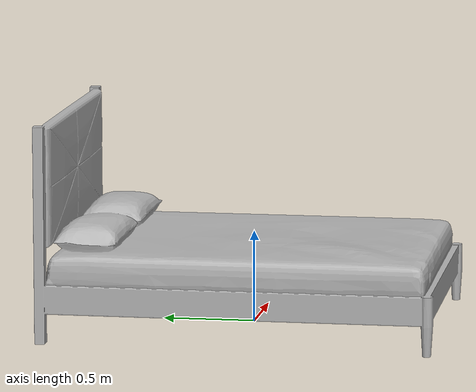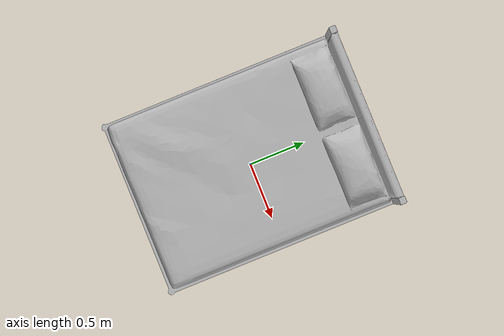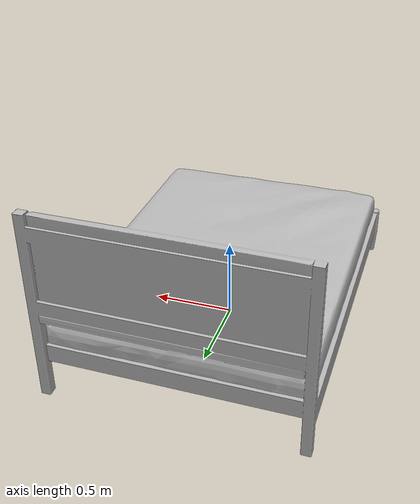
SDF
<sdf version="1.6">
	<model name="Beds_O1ebe36c65561_lod0">
		<link name="main_link">
			<visual name="visual_RootNode">
				<geometry>
					<mesh>
						<uri>model://Beds_O1ebe36c65561_lod0/meshes/visual_RootNode.dae</uri>
					</mesh>
				</geometry>
			</visual>
			<collision name="collision_RootNode_lod0_0">
				<geometry>
					<mesh>
						<uri>model://Beds_O1ebe36c65561_lod0/meshes/collision_RootNode_lod0_0.dae</uri>
					</mesh>
				</geometry>
			</collision>
		</link>
	</model>
</sdf>
